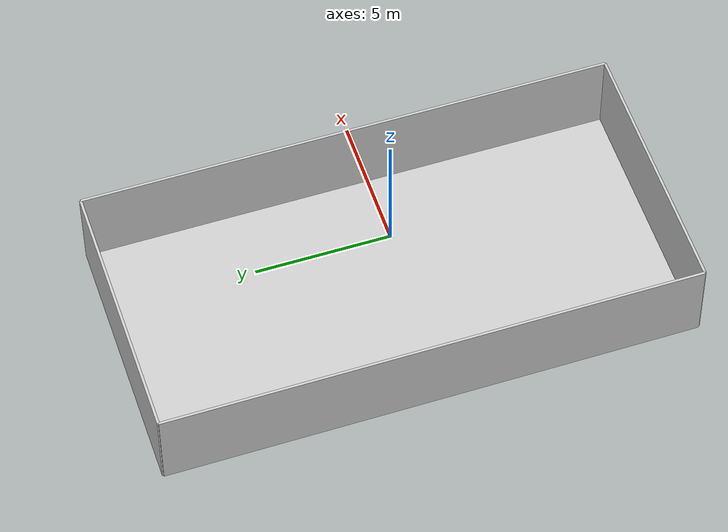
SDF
<?xml version="1.0"?>
<sdf version="1.6">
  <world name="swimming_pool_world">
    <!-- Set zero gravity -->
    <gravity>0 0 0</gravity>

    <!-- Include Gazebo's default ground plane -->
    <include>
      <uri>model://ground_plane</uri>
    </include>

    <!-- Define the swimming pool -->
    <model name="swimming_pool">
      <static>true</static> <!-- Make the pool immovable -->
      <pose>0 0 0 0 0 0</pose>

      <!-- Pool floor -->
      <link name="pool_floor">
        <pose>0 0 -3.3 0 0 0</pose> <!-- Positioned at the bottom of the pool -->
        <collision name="collision">
          <geometry>
            <box>
              <size>10 20 0.1</size>
            </box>
          </geometry>
        </collision>
        <visual name="visual">
          <geometry>
            <box>
              <size>10 20 0.1</size>
            </box>
          </geometry>
          <material>
            <ambient>0.8 0.8 0.8 1</ambient>
            <diffuse>0.8 0.8 0.8 1</diffuse>
          </material>
        </visual>
      </link>

      <!-- Pool walls -->
      <!-- Wall 1 -->
      <link name="pool_wall1">
        <pose>5 0 -1.65 0 0 0</pose> <!-- Positioned at one end of the pool -->
        <collision name="collision">
          <geometry>
            <box>
              <size>0.1 20 3.3</size>
            </box>
          </geometry>
        </collision>
        <visual name="visual">
          <geometry>
            <box>
              <size>0.1 20 3.3</size>
            </box>
          </geometry>
          <material>
            <ambient>0.8 0.8 0.8 1</ambient>
            <diffuse>0.8 0.8 0.8 1</diffuse>
          </material>
        </visual>
      </link>

      <!-- Wall 2 -->
      <link name="pool_wall2">
        <pose>-5 0 -1.65 0 0 0</pose> <!-- Positioned at the other end of the pool -->
        <collision name="collision">
          <geometry>
            <box>
              <size>0.1 20 3.3</size>
            </box>
          </geometry>
        </collision>
        <visual name="visual">
          <geometry>
            <box>
              <size>0.1 20 3.3</size>
            </box>
          </geometry>
          <material>
            <ambient>0.8 0.8 0.8 1</ambient>
            <diffuse>0.8 0.8 0.8 1</diffuse>
          </material>
        </visual>
      </link>

      <!-- Wall 3 -->
      <link name="pool_wall3">
        <pose>0 10 -1.65 0 0 0</pose> <!-- Positioned along one side of the pool -->
        <collision name="collision">
          <geometry>
            <box>
              <size>10 0.1 3.3</size>
            </box>
          </geometry>
        </collision>
        <visual name="visual">
          <geometry>
            <box>
              <size>10 0.1 3.3</size>
            </box>
          </geometry>
          <material>
            <ambient>0.8 0.8 0.8 1</ambient>
            <diffuse>0.8 0.8 0.8 1</diffuse>
          </material>
        </visual>
      </link>

      <!-- Wall 4 -->
      <link name="pool_wall4">
        <pose>0 -10 -1.65 0 0 0</pose> <!-- Positioned along the other side of the pool -->
        <collision name="collision">
          <geometry>
            <box>
              <size>10 0.1 3.3</size>
            </box>
          </geometry>
        </collision>
        <visual name="visual">
          <geometry>
            <box>
              <size>10 0.1 3.3</size>
            </box>
          </geometry>
          <material>
            <ambient>0.8 0.8 0.8 1</ambient>
            <diffuse>0.8 0.8 0.8 1</diffuse>
          </material>
        </visual>
      </link>
    </model>

    <!-- Lighting -->
    <light name="sun" type="directional">
      <cast_shadows>true</cast_shadows>
      <pose>0 0 10 0 0 0</pose>
      <diffuse>1 1 1 1</diffuse>
      <specular>1 1 1 1</specular>
      <attenuation>
        <range>1000</range>
        <constant>0.9</constant>
        <linear>0.01</linear>
        <quadratic>0.001</quadratic>
      </attenuation>
      <direction>-0.5 0.5 -1</direction>
    </light>

  </world>
</sdf>
